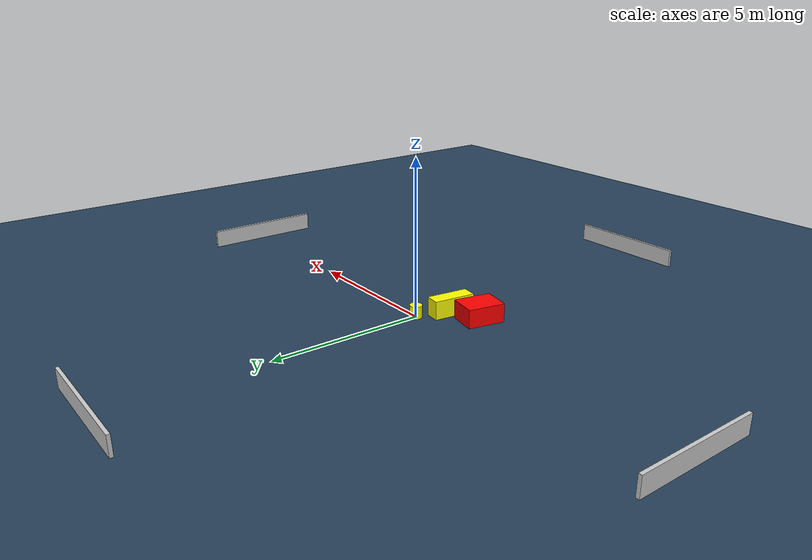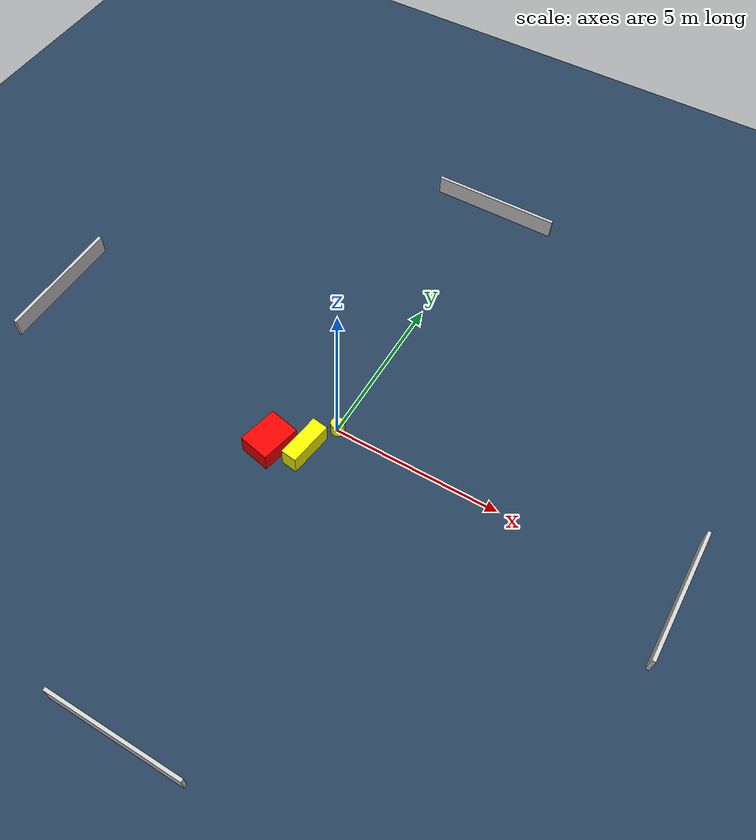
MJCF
<?xml version="1.0" ?>
<mujoco model="generated_environment">
  <option timestep="0.01" integrator="RK4" cone="elliptic"/>
  <default>
    <geom density="1"/>
  </default>
  <asset>
    <texture builtin="gradient" height="3072" name="skybox" rgb1="0.3 0.5 0.7" rgb2="0 0 0" type="skybox" width="512"/>
    <texture builtin="checker" height="300" name="groundplane" rgb1="0.2 0.3 0.4" rgb2="0.1 0.2 0.3" type="2d" width="300"/>
    <material name="groundplane" reflectance="0.2" texrepeat="5 5" texture="groundplane"/>
  </asset>
  <worldbody>
    <light dir="0 0 -1" directional="true" pos="0 0 1.5"/>
    <geom condim="3" friction="0.5 0.005 0.001" material="groundplane" name="floor" pos="0 0 0" size="0 0 0.05" type="plane"/>
    <body name="walls">
      <geom name="wall_1" condim="4" pos="-10.0 0.0 0.3" rgba="0.800000011920929 0.800000011920929 0.800000011920929 1.0" size="0.05 2.0 0.3" type="box"/>
      <geom name="wall_2" condim="4" pos="10.0 0.0 0.3" rgba="0.800000011920929 0.800000011920929 0.800000011920929 1.0" size="0.05 2.0 0.3" type="box"/>
      <geom name="wall_3" condim="4" pos="0.0 -10.0 0.3" rgba="0.800000011920929 0.800000011920929 0.800000011920929 1.0" size="2.0 0.05 0.3" type="box"/>
      <geom name="wall_4" condim="4" pos="0.0 10.0 0.3" rgba="0.800000011920929 0.800000011920929 0.800000011920929 1.0" size="2.0 0.05 0.3" type="box"/>
    </body>
    <body name="robot">
      <joint name="joint_x" type="slide" pos="0 0 0" axis="1 0 0"/>
      <joint name="joint_y" type="slide" pos="0 0 0" axis="0 1 0"/>
      <geom name="robot" type="cylinder" pos="0.0 0.0 0.2" size="0.2 0.2 0.0" mass="5.0" friction="1.0 0.005 0.0001" condim="4" rgba="1.0 1.0 0.0 1.0"/>
    </body>
    <body name="obstacle_1_movable">
      <geom name="obstacle_1_movable" condim="4" pos="-0.4359132099577804 -1.0333350938990278 0.3" euler="0 0 82.2699911211428" friction="0.0 0.005 0.001" rgba="1.0 1.0 0.0 1.0" size="0.6852357789586758 0.24134605353339933 0.3" type="box" mass="0.1"/>
      <joint type="free"/>
    </body>
    <body name="obstacle_2_static">
      <geom name="obstacle_2_static" condim="4" pos="-1.3572536591385345 -1.399366216025657 0.3" euler="0 0 77.8837242574606" friction="0.0 0.005 0.001" rgba="1.0 0.0 0.0 1.0" size="0.6081947438919453 0.46497843947929246 0.3" type="box"/>
    </body>
  </worldbody>
  <actuator>
    <motor name="actuator_x" joint="joint_x" gear="1" ctrlrange="-1 1"/>
    <motor name="actuator_y" joint="joint_y" gear="1" ctrlrange="-1 1"/>
  </actuator>
</mujoco>
